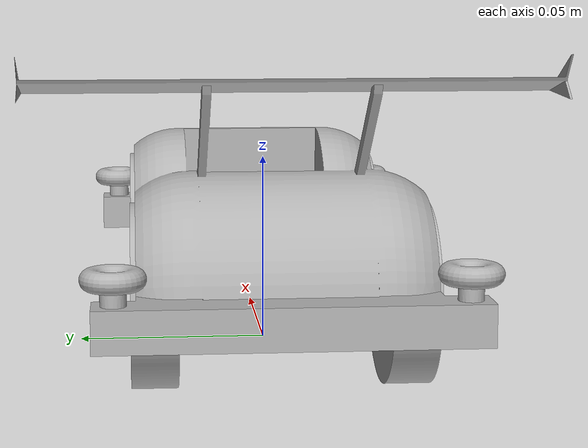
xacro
<?xml version="1.0" ?>
<robot name="Car" xmlns:xacro="http://www.ros.org/wiki/xacro">

<xacro:include filename="$(find Car_description)/urdf/materials.xacro" />
<xacro:include filename="$(find Car_description)/urdf/Car.trans" />
<xacro:include filename="$(find Car_description)/urdf/Car.gazebo" />
<link name="base_link">
  <inertial>
    <origin xyz="-0.0004288966182861434 -9.026171812362051e-06 0.02926037326040948" rpy="0 0 0"/>
    <mass value="1.4781345060443598"/>
    <inertia ixx="0.000679" iyy="0.004866" izz="0.005268" ixy="-1e-06" iyz="1e-06" ixz="2.7e-05"/>
  </inertial>
  <visual>
    <origin xyz="0 0 0" rpy="0 0 0"/>
    <geometry>
      <mesh filename="package://Car_description/meshes/base_link.stl" scale="0.001 0.001 0.001"/>
    </geometry>
    <material name="silver"/>
  </visual>
  <collision>
    <origin xyz="0 0 0" rpy="0 0 0"/>
    <geometry>
      <mesh filename="package://Car_description/meshes/base_link.stl" scale="0.001 0.001 0.001"/>
    </geometry>
  </collision>
</link>

<link name="front_right_wheel_1">
  <inertial>
    <origin xyz="0.0 -0.005624999999999995 0.0" rpy="0 0 0"/>
    <mass value="0.1404549624927002"/>
    <inertia ixx="1.9e-05" iyy="3.6e-05" izz="1.9e-05" ixy="0.0" iyz="-0.0" ixz="-0.0"/>
  </inertial>
  <visual>
    <origin xyz="-0.0495 0.025 -0.0225" rpy="0 0 0"/>
    <geometry>
      <mesh filename="package://Car_description/meshes/front_right_wheel_1.stl" scale="0.001 0.001 0.001"/>
    </geometry>
    <material name="silver"/>
  </visual>
  <collision>
    <origin xyz="-0.0495 0.025 -0.0225" rpy="0 0 0"/>
    <geometry>
      <mesh filename="package://Car_description/meshes/front_right_wheel_1.stl" scale="0.001 0.001 0.001"/>
    </geometry>
  </collision>
</link>

<link name="front_left_wheel_1">
  <inertial>
    <origin xyz="0.0 0.005625000000000012 0.0" rpy="0 0 0"/>
    <mass value="0.1404549624927002"/>
    <inertia ixx="1.9e-05" iyy="3.6e-05" izz="1.9e-05" ixy="0.0" iyz="-0.0" ixz="0.0"/>
  </inertial>
  <visual>
    <origin xyz="-0.05 -0.025 -0.0225" rpy="0 0 0"/>
    <geometry>
      <mesh filename="package://Car_description/meshes/front_left_wheel_1.stl" scale="0.001 0.001 0.001"/>
    </geometry>
    <material name="silver"/>
  </visual>
  <collision>
    <origin xyz="-0.05 -0.025 -0.0225" rpy="0 0 0"/>
    <geometry>
      <mesh filename="package://Car_description/meshes/front_left_wheel_1.stl" scale="0.001 0.001 0.001"/>
    </geometry>
  </collision>
</link>

<link name="rear_left_wheel_1">
  <inertial>
    <origin xyz="-6.938893903907228e-18 0.0056250000000000015 0.0" rpy="0 0 0"/>
    <mass value="0.1404549624927002"/>
    <inertia ixx="1.9e-05" iyy="3.6e-05" izz="1.9e-05" ixy="-0.0" iyz="-0.0" ixz="0.0"/>
  </inertial>
  <visual>
    <origin xyz="0.05 -0.025 -0.0225" rpy="0 0 0"/>
    <geometry>
      <mesh filename="package://Car_description/meshes/rear_left_wheel_1.stl" scale="0.001 0.001 0.001"/>
    </geometry>
    <material name="silver"/>
  </visual>
  <collision>
    <origin xyz="0.05 -0.025 -0.0225" rpy="0 0 0"/>
    <geometry>
      <mesh filename="package://Car_description/meshes/rear_left_wheel_1.stl" scale="0.001 0.001 0.001"/>
    </geometry>
  </collision>
</link>

<link name="rear_right_wheel_1">
  <inertial>
    <origin xyz="-6.938893903907228e-18 -0.005624999999999995 0.0" rpy="0 0 0"/>
    <mass value="0.1404549624927002"/>
    <inertia ixx="1.9e-05" iyy="3.6e-05" izz="1.9e-05" ixy="-0.0" iyz="-0.0" ixz="0.0"/>
  </inertial>
  <visual>
    <origin xyz="0.05 0.025 -0.0225" rpy="0 0 0"/>
    <geometry>
      <mesh filename="package://Car_description/meshes/rear_right_wheel_1.stl" scale="0.001 0.001 0.001"/>
    </geometry>
    <material name="silver"/>
  </visual>
  <collision>
    <origin xyz="0.05 0.025 -0.0225" rpy="0 0 0"/>
    <geometry>
      <mesh filename="package://Car_description/meshes/rear_right_wheel_1.stl" scale="0.001 0.001 0.001"/>
    </geometry>
  </collision>
</link>

<joint name="Revolute 1" type="continuous">
  <origin xyz="0.0495 -0.025 0.0225" rpy="0 0 0"/>
  <parent link="base_link"/>
  <child link="front_right_wheel_1"/>
  <axis xyz="0.0 1.0 0.0"/>
</joint>

<joint name="Revolute 2" type="continuous">
  <origin xyz="0.05 0.025 0.0225" rpy="0 0 0"/>
  <parent link="base_link"/>
  <child link="front_left_wheel_1"/>
  <axis xyz="0.0 1.0 0.0"/>
</joint>

<joint name="Revolute 3" type="continuous">
  <origin xyz="-0.05 0.025 0.0225" rpy="0 0 0"/>
  <parent link="base_link"/>
  <child link="rear_left_wheel_1"/>
  <axis xyz="0.0 1.0 0.0"/>
</joint>

<joint name="Revolute 4" type="continuous">
  <origin xyz="-0.05 -0.025 0.0225" rpy="0 0 0"/>
  <parent link="base_link"/>
  <child link="rear_right_wheel_1"/>
  <axis xyz="0.0 -1.0 0.0"/>
</joint>

</robot>

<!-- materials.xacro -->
<robot name="Car" xmlns:xacro="http://www.ros.org/wiki/xacro" >

<material name="silver">
  <color rgba="0.700 0.700 0.700 1.000"/>
</material>

</robot>

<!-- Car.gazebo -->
<robot name="Car" xmlns:xacro="http://www.ros.org/wiki/xacro" >

<xacro:property name="body_color" value="Gazebo/Silver" />

<gazebo>
  <plugin name="control" filename="libgazebo_ros_control.so"/>
</gazebo>

<gazebo reference="base_link">
  <material>${body_color}</material>
  <mu1>0.1</mu1>
  <mu2>0.1</mu2>
  <selfCollide>true</selfCollide>
  <gravity>true</gravity>
</gazebo>

<gazebo reference="front_right_wheel_1">
  <material>${body_color}</material>
  <mu1>2000</mu1>
  <mu2>2000</mu2>
  <selfCollide>true</selfCollide>
</gazebo>

<gazebo reference="front_left_wheel_1">
  <material>${body_color}</material>
  <mu1>2000</mu1>
  <mu2>2000</mu2>
  <selfCollide>true</selfCollide>
</gazebo>

<gazebo reference="rear_left_wheel_1">
  <material>${body_color}</material>
  <mu1>2000</mu1>
  <mu2>2000</mu2>
  <selfCollide>true</selfCollide>
</gazebo>

<gazebo reference="rear_right_wheel_1">
  <material>${body_color}</material>
  <mu1>2000</mu1>
  <mu2>2000</mu2>
  <selfCollide>true</selfCollide>
</gazebo>

<gazebo>
  <plugin name="differential_drive_controller" filename="libgazebo_ros_diff_drive.so">

    <!-- Plugin update rate in Hz -->
    <updateRate>120</updateRate>

    <!-- Name of left joint, defaults to `left_joint` -->
    <leftJoint>Revolute 2</leftJoint>

    <!-- Name of right joint, defaults to `right_joint` -->
    <rightJoint>Revolute 1</rightJoint>

    <!-- The distance from the center of one wheel to the other, in meters, defaults to 0.34 m -->
    <wheelSeparation>0.2</wheelSeparation>

    <!-- Diameter of the wheels, in meters, defaults to 0.15 m -->
    <wheelDiameter>0.1</wheelDiameter>

    <!-- Wheel acceleration, in rad/s^2, defaults to 0.0 rad/s^2 -->
    <wheelAcceleration>1.0</wheelAcceleration>

    <!-- Maximum torque which the wheels can produce, in Nm, defaults to 5 Nm -->
    <wheelTorque>50</wheelTorque>

    <!-- Topic to receive geometry_msgs/Twist message commands, defaults to `cmd_vel` -->
    <commandTopic>cmd_vel</commandTopic>

    <!-- Topic to publish nav_msgs/Odometry messages, defaults to `odom` -->
    <odometryTopic>odom</odometryTopic>

    <!-- Odometry frame, defaults to `odom` -->
    <odometryFrame>odom</odometryFrame>

    <!-- Robot frame to calculate odometry from, defaults to `base_footprint` -->
    <robotBaseFrame>base_link</robotBaseFrame>

    <!-- Odometry source, 0 for ENCODER, 1 for WORLD, defaults to WORLD -->
    <odometrySource>1</odometrySource>

    <!-- Set to true to publish transforms for the wheel links, defaults to false -->
    <publishWheelTF>true</publishWheelTF>

    <!-- Set to true to publish transforms for the odometry, defaults to true -->
    <publishOdom>true</publishOdom>

    <!-- Set to true to publish sensor_msgs/JointState on /joint_states for the wheel joints, defaults to false -->
    <publishWheelJointState>true</publishWheelJointState>

    <!-- Set to true to swap right and left wheels, defaults to true -->
    <legacyMode>false</legacyMode>
  </plugin>
</gazebo>

</robot>
